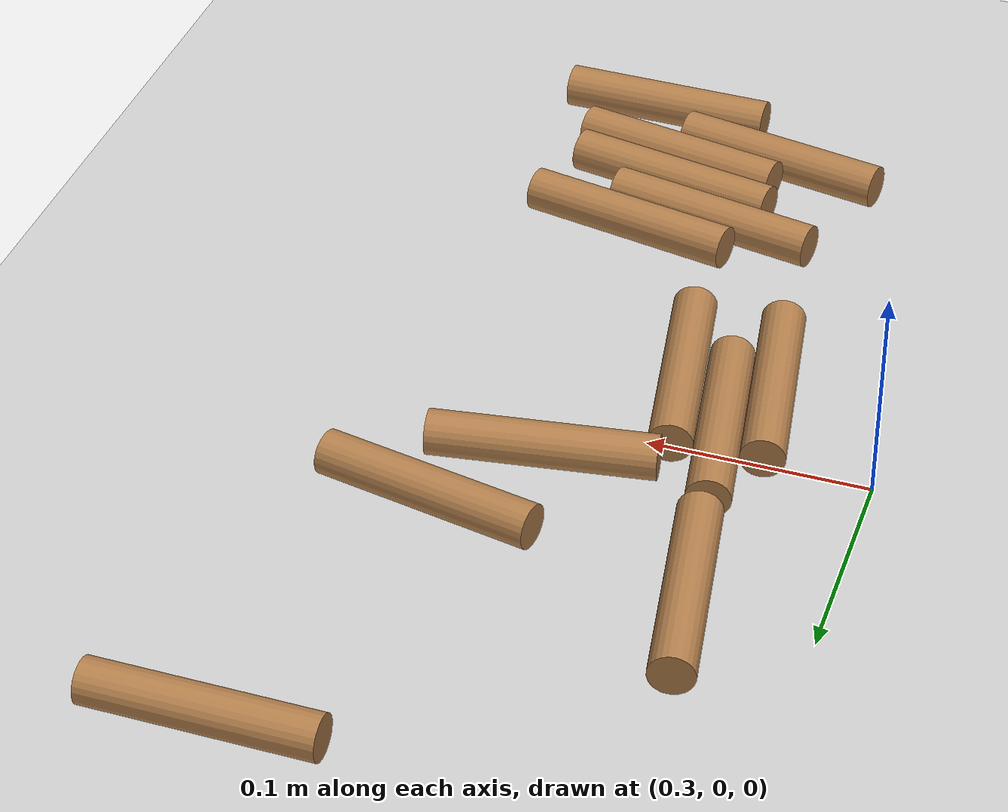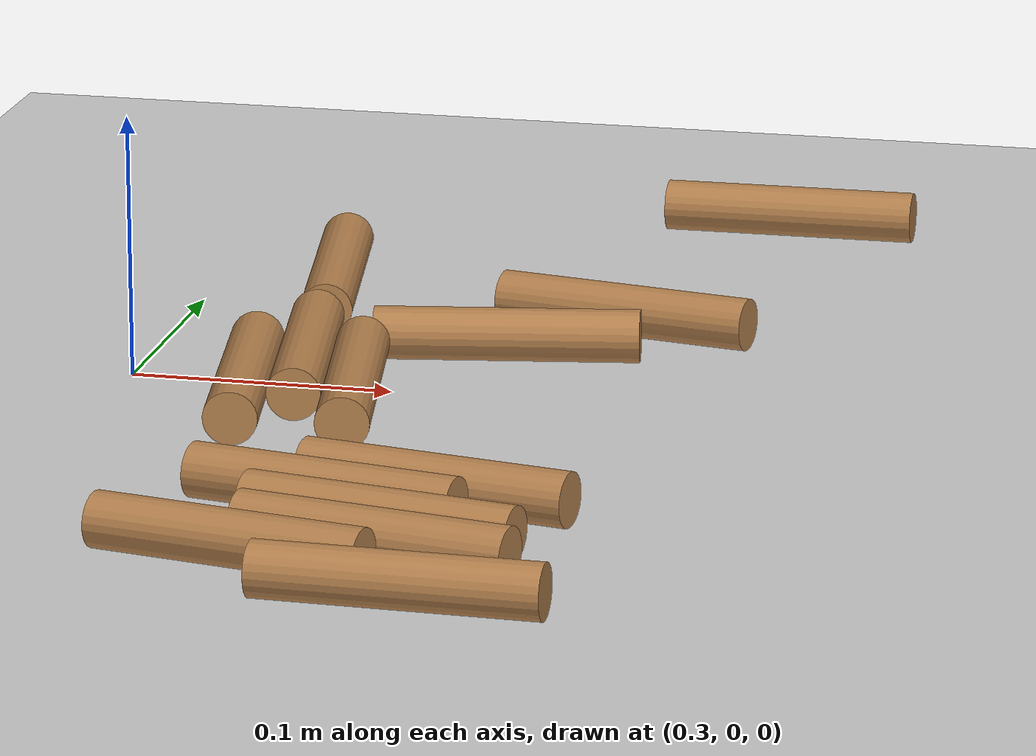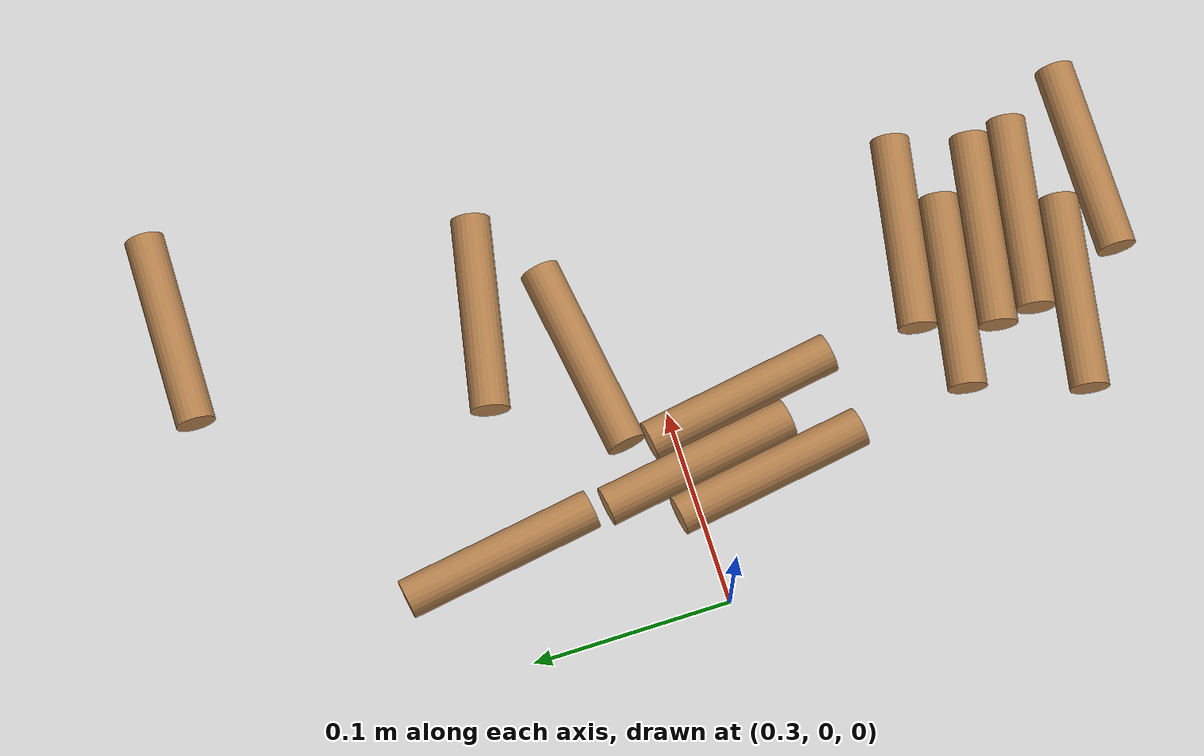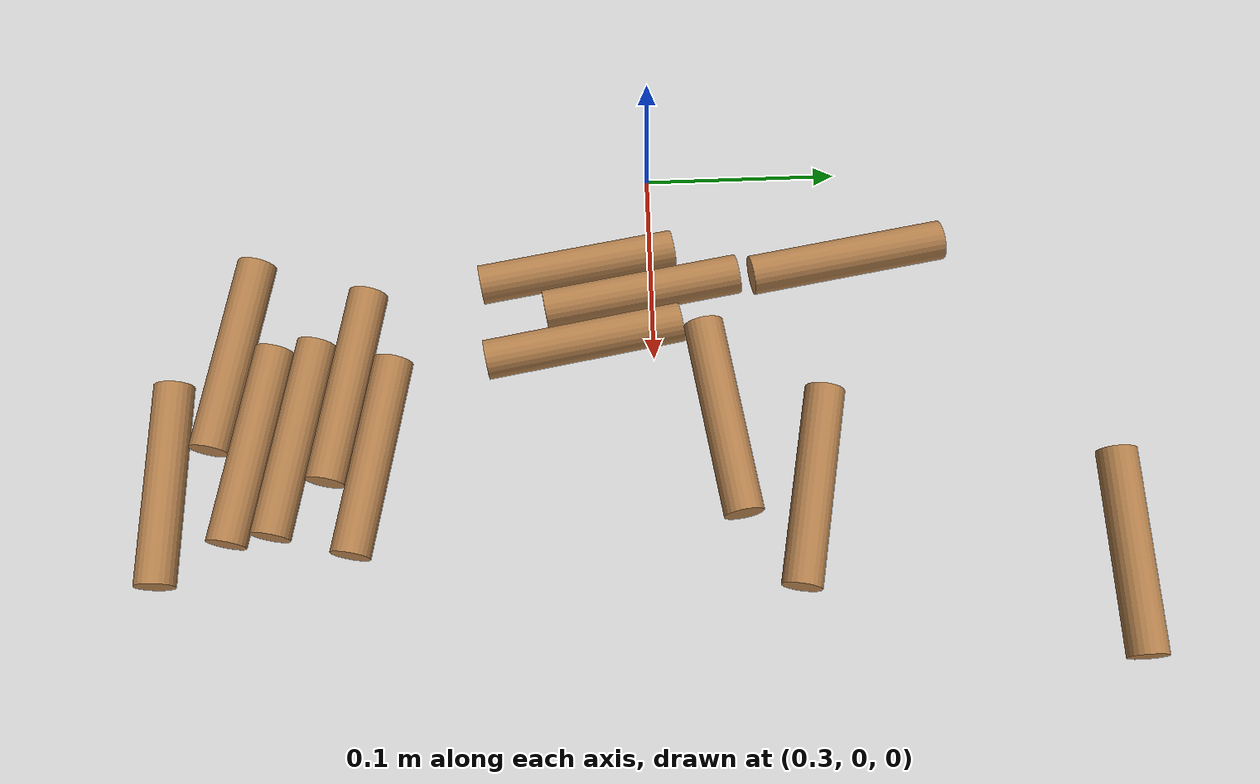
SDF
<sdf version="1.6">
 <world name="default">
  <light name="sun" type="directional">
   <pose>0 0 10 0 -0 0</pose>
   <diffuse>0.8 0.8 0.8 1</diffuse>
   <specular>0.2 0.2 0.2 1</specular>
   <attenuation>
    <range>1000</range>
    <constant>0.9</constant>
    <linear>0.01</linear>
    <quadratic>0.001</quadratic>
   </attenuation>
   <direction>-0.5 0.1 -0.9</direction>
  </light>
  <model name="ground_plane">
   <static>1</static>
   <link name="link">
    <collision name="collision">
     <geometry><plane><normal>0 0 1</normal><size>100 100</size></plane></geometry>
     <surface><friction><ode><mu>100</mu><mu2>50</mu2></ode></friction></surface>
    </collision>
    <visual name="visual">
     <cast_shadows>0</cast_shadows>
     <geometry><plane><normal>0 0 1</normal><size>100 100</size></plane></geometry>
     <material>
      <script><uri>file://media/materials/scripts/gazebo.material</uri><name>Gazebo/Grey</name></script>
     </material>
    </visual>
   </link>
  </model>
  <gravity>0 0 -9.8</gravity>
  <magnetic_field>6e-06 2.3e-05 -4.2e-05</magnetic_field>
  <atmosphere type="adiabatic"/>
  <physics name="default_physics" default="0" type="ode">
   <max_step_size>0.001</max_step_size>
   <real_time_factor>1</real_time_factor>
   <real_time_update_rate>1000</real_time_update_rate>
  </physics>
  <scene><ambient>0.4 0.4 0.4 1</ambient><background>0.7 0.7 0.7 1</background><shadows>1</shadows></scene>
  <audio><device>default</device></audio>
  <spherical_coordinates>
   <surface_model>EARTH_WGS84</surface_model>
   <latitude_deg>0</latitude_deg>
   <longitude_deg>0</longitude_deg>
   <elevation>0</elevation>
   <heading_deg>0</heading_deg>
  </spherical_coordinates>
  <model name="my wooden_peg">
   <link name="link">
    <pose>0 0 0.04 0 -0 0</pose>
    <inertial>
     <mass>0.0175</mass>
     <inertia>
      <ixx>9.74923e-06</ixx>
      <ixy>0</ixy>
      <ixz>0</ixz>
      <iyy>9.74923e-06</iyy>
      <iyz>0</iyz>
      <izz>8.31797e-07</izz>
     </inertia>
    </inertial>
    <collision name="collision">
     <geometry><cylinder><radius>0.01</radius><length>0.1</length></cylinder></geometry>
     <surface>
      <contact>
       <poissons_ratio>0.347</poissons_ratio>
       <elastic_modulus>8.8e+09</elastic_modulus>
       <ode><kp>100000</kp><kd>100</kd><max_vel>100</max_vel><min_depth>0.001</min_depth></ode>
      </contact>
      <friction>
       <torsional>
        <coefficient>1</coefficient>
        <use_patch_radius>0</use_patch_radius>
        <surface_radius>0.01</surface_radius>
       </torsional>
      </friction>
     </surface>
    </collision>
    <visual name="visual">
     <geometry><cylinder><radius>0.01</radius><length>0.1</length></cylinder></geometry>
     <material>
      <script><uri>file://media/materials/scripts/gazebo.material</uri><name>Gazebo/Wood</name></script>
     </material>
    </visual>
   </link>
   <pose>0.420498 -0.240055 0.014519 1.56998 0.229752 1.546</pose>
  </model>
  <model name="my wooden_peg_clone">
   <link name="link">
    <pose>0 0 0.04 0 -0 0</pose>
    <inertial>
     <mass>0.0175</mass>
     <inertia>
      <ixx>9.74923e-06</ixx>
      <ixy>0</ixy>
      <ixz>0</ixz>
      <iyy>9.74923e-06</iyy>
      <iyz>0</iyz>
      <izz>8.31797e-07</izz>
     </inertia>
    </inertial>
    <collision name="collision">
     <geometry><cylinder><radius>0.01</radius><length>0.1</length></cylinder></geometry>
     <surface>
      <contact>
       <poissons_ratio>0.347</poissons_ratio>
       <elastic_modulus>8.8e+09</elastic_modulus>
       <ode><kp>100000</kp><kd>100</kd><max_vel>100</max_vel><min_depth>0.001</min_depth></ode>
      </contact>
      <friction>
       <torsional>
        <coefficient>1</coefficient>
        <use_patch_radius>0</use_patch_radius>
        <surface_radius>0.01</surface_radius>
       </torsional>
      </friction>
     </surface>
    </collision>
    <visual name="visual">
     <geometry><cylinder><radius>0.01</radius><length>0.1</length></cylinder></geometry>
     <material>
      <script><uri>file://media/materials/scripts/gazebo.material</uri><name>Gazebo/Wood</name></script>
     </material>
    </visual>
   </link>
   <pose>0.403091 -0.192502 0.014505 -1.56992 0.476841 -1.76031</pose>
  </model>
  <model name="my wooden_peg_clone_clone">
   <link name="link">
    <pose>0 0 0.04 0 -0 0</pose>
    <inertial>
     <mass>0.0175</mass>
     <inertia>
      <ixx>9.74923e-06</ixx>
      <ixy>0</ixy>
      <ixz>0</ixz>
      <iyy>9.74923e-06</iyy>
      <iyz>0</iyz>
      <izz>8.31797e-07</izz>
     </inertia>
    </inertial>
    <collision name="collision">
     <geometry><cylinder><radius>0.01</radius><length>0.1</length></cylinder></geometry>
     <surface>
      <contact>
       <poissons_ratio>0.347</poissons_ratio>
       <elastic_modulus>8.8e+09</elastic_modulus>
       <ode><kp>100000</kp><kd>100</kd><max_vel>100</max_vel><min_depth>0.001</min_depth></ode>
      </contact>
      <friction>
       <torsional>
        <coefficient>1</coefficient>
        <use_patch_radius>0</use_patch_radius>
        <surface_radius>0.01</surface_radius>
       </torsional>
      </friction>
     </surface>
    </collision>
    <visual name="visual">
     <geometry><cylinder><radius>0.01</radius><length>0.1</length></cylinder></geometry>
     <material>
      <script><uri>file://media/materials/scripts/gazebo.material</uri><name>Gazebo/Wood</name></script>
     </material>
    </visual>
   </link>
   <pose>0.400328 -0.171607 0.014503 -1.55691 -1.51443 -1.77446</pose>
  </model>
  <model name="my wooden_peg_clone_clone_0">
   <link name="link">
    <pose>0 0 0.04 0 -0 0</pose>
    <inertial>
     <mass>0.0175</mass>
     <inertia>
      <ixx>9.74923e-06</ixx>
      <ixy>0</ixy>
      <ixz>0</ixz>
      <iyy>9.74923e-06</iyy>
      <iyz>0</iyz>
      <izz>8.31797e-07</izz>
     </inertia>
    </inertial>
    <collision name="collision">
     <geometry><cylinder><radius>0.01</radius><length>0.1</length></cylinder></geometry>
     <surface>
      <contact>
       <poissons_ratio>0.347</poissons_ratio>
       <elastic_modulus>8.8e+09</elastic_modulus>
       <ode><kp>100000</kp><kd>100</kd><max_vel>100</max_vel><min_depth>0.001</min_depth></ode>
      </contact>
      <friction>
       <torsional>
        <coefficient>1</coefficient>
        <use_patch_radius>0</use_patch_radius>
        <surface_radius>0.01</surface_radius>
       </torsional>
      </friction>
     </surface>
    </collision>
    <visual name="visual">
     <geometry><cylinder><radius>0.01</radius><length>0.1</length></cylinder></geometry>
     <material>
      <script><uri>file://media/materials/scripts/gazebo.material</uri><name>Gazebo/Wood</name></script>
     </material>
    </visual>
   </link>
   <pose>0.410869 -0.132922 0.014511 1.56918 1.06475 1.37978</pose>
  </model>
  <model name="my wooden_peg_clone_clone_1">
   <link name="link">
    <pose>0 0 0.04 0 -0 0</pose>
    <inertial>
     <mass>0.0175</mass>
     <inertia>
      <ixx>9.74923e-06</ixx>
      <ixy>0</ixy>
      <ixz>0</ixz>
      <iyy>9.74923e-06</iyy>
      <iyz>0</iyz>
      <izz>8.31797e-07</izz>
     </inertia>
    </inertial>
    <collision name="collision">
     <geometry><cylinder><radius>0.01</radius><length>0.1</length></cylinder></geometry>
     <surface>
      <contact>
       <poissons_ratio>0.347</poissons_ratio>
       <elastic_modulus>8.8e+09</elastic_modulus>
       <ode><kp>100000</kp><kd>100</kd><max_vel>100</max_vel><min_depth>0.001</min_depth></ode>
      </contact>
      <friction>
       <torsional>
        <coefficient>1</coefficient>
        <use_patch_radius>0</use_patch_radius>
        <surface_radius>0.01</surface_radius>
       </torsional>
      </friction>
     </surface>
    </collision>
    <visual name="visual">
     <geometry><cylinder><radius>0.01</radius><length>0.1</length></cylinder></geometry>
     <material>
      <script><uri>file://media/materials/scripts/gazebo.material</uri><name>Gazebo/Wood</name></script>
     </material>
    </visual>
   </link>
   <pose>0.434303 0.081891 0.01453 1.56133 1.48806 1.37079</pose>
  </model>
  <model name="my wooden_peg_clone_clone_2">
   <link name="link">
    <pose>0 0 0.04 0 -0 0</pose>
    <inertial>
     <mass>0.0175</mass>
     <inertia>
      <ixx>9.74923e-06</ixx>
      <ixy>0</ixy>
      <ixz>0</ixz>
      <iyy>9.74923e-06</iyy>
      <iyz>0</iyz>
      <izz>8.31797e-07</izz>
     </inertia>
    </inertial>
    <collision name="collision">
     <geometry><cylinder><radius>0.01</radius><length>0.1</length></cylinder></geometry>
     <surface>
      <contact>
       <poissons_ratio>0.347</poissons_ratio>
       <elastic_modulus>8.8e+09</elastic_modulus>
       <ode><kp>100000</kp><kd>100</kd><max_vel>100</max_vel><min_depth>0.001</min_depth></ode>
      </contact>
      <friction>
       <torsional>
        <coefficient>1</coefficient>
        <use_patch_radius>0</use_patch_radius>
        <surface_radius>0.01</surface_radius>
       </torsional>
      </friction>
     </surface>
    </collision>
    <visual name="visual">
     <geometry><cylinder><radius>0.01</radius><length>0.1</length></cylinder></geometry>
     <material>
      <script><uri>file://media/materials/scripts/gazebo.material</uri><name>Gazebo/Wood</name></script>
     </material>
    </visual>
   </link>
   <pose>0.374113 -0.146218 0.014482 -1.56968 -0.791803 -1.76127</pose>
  </model>
  <model name="my wooden_peg_clone_clone_3">
   <link name="link">
    <pose>0 0 0.04 0 -0 0</pose>
    <inertial>
     <mass>0.0175</mass>
     <inertia>
      <ixx>9.74923e-06</ixx>
      <ixy>0</ixy>
      <ixz>0</ixz>
      <iyy>9.74923e-06</iyy>
      <iyz>0</iyz>
      <izz>8.31797e-07</izz>
     </inertia>
    </inertial>
    <collision name="collision">
     <geometry><cylinder><radius>0.01</radius><length>0.1</length></cylinder></geometry>
     <surface>
      <contact>
       <poissons_ratio>0.347</poissons_ratio>
       <elastic_modulus>8.8e+09</elastic_modulus>
       <ode><kp>100000</kp><kd>100</kd><max_vel>100</max_vel><min_depth>0.001</min_depth></ode>
      </contact>
      <friction>
       <torsional>
        <coefficient>1</coefficient>
        <use_patch_radius>0</use_patch_radius>
        <surface_radius>0.01</surface_radius>
       </torsional>
      </friction>
     </surface>
    </collision>
    <visual name="visual">
     <geometry><cylinder><radius>0.01</radius><length>0.1</length></cylinder></geometry>
     <material>
      <script><uri>file://media/materials/scripts/gazebo.material</uri><name>Gazebo/Wood</name></script>
     </material>
    </visual>
   </link>
   <pose>0.360092 -0.077259 0.014471 1.57148 -1.38 -2.98139</pose>
  </model>
  <model name="my wooden_peg_clone_clone_4">
   <link name="link">
    <pose>0 0 0.04 0 -0 0</pose>
    <inertial>
     <mass>0.0175</mass>
     <inertia>
      <ixx>9.74923e-06</ixx>
      <ixy>0</ixy>
      <ixz>0</ixz>
      <iyy>9.74923e-06</iyy>
      <iyz>0</iyz>
      <izz>8.31797e-07</izz>
     </inertia>
    </inertial>
    <collision name="collision">
     <geometry><cylinder><radius>0.01</radius><length>0.1</length></cylinder></geometry>
     <surface>
      <contact>
       <poissons_ratio>0.347</poissons_ratio>
       <elastic_modulus>8.8e+09</elastic_modulus>
       <ode><kp>100000</kp><kd>100</kd><max_vel>100</max_vel><min_depth>0.001</min_depth></ode>
      </contact>
      <friction>
       <torsional>
        <coefficient>1</coefficient>
        <use_patch_radius>0</use_patch_radius>
        <surface_radius>0.01</surface_radius>
       </torsional>
      </friction>
     </surface>
    </collision>
    <visual name="visual">
     <geometry><cylinder><radius>0.01</radius><length>0.1</length></cylinder></geometry>
     <material>
      <script><uri>file://media/materials/scripts/gazebo.material</uri><name>Gazebo/Wood</name></script>
     </material>
    </visual>
   </link>
   <pose>0.476373 0.038221 0.015303 -1.57528 -0.46315 1.71968</pose>
  </model>
  <model name="my wooden_peg_clone_clone_5">
   <link name="link">
    <pose>0 0 0.04 0 -0 0</pose>
    <inertial>
     <mass>0.0175</mass>
     <inertia>
      <ixx>9.74923e-06</ixx>
      <ixy>0</ixy>
      <ixz>0</ixz>
      <iyy>9.74923e-06</iyy>
      <iyz>0</iyz>
      <izz>8.31797e-07</izz>
     </inertia>
    </inertial>
    <collision name="collision">
     <geometry><cylinder><radius>0.01</radius><length>0.1</length></cylinder></geometry>
     <surface>
      <contact>
       <poissons_ratio>0.347</poissons_ratio>
       <elastic_modulus>8.8e+09</elastic_modulus>
       <ode><kp>100000</kp><kd>100</kd><max_vel>100</max_vel><min_depth>0.001</min_depth></ode>
      </contact>
      <friction>
       <torsional>
        <coefficient>1</coefficient>
        <use_patch_radius>0</use_patch_radius>
        <surface_radius>0.01</surface_radius>
       </torsional>
      </friction>
     </surface>
    </collision>
    <visual name="visual">
     <geometry><cylinder><radius>0.01</radius><length>0.1</length></cylinder></geometry>
     <material>
      <script><uri>file://media/materials/scripts/gazebo.material</uri><name>Gazebo/Wood</name></script>
     </material>
    </visual>
   </link>
   <pose>0.355819 -0.203823 0.014272 -1.57001 0.106563 -1.76015</pose>
  </model>
  <model name="my wooden_peg_clone_clone_3_clone">
   <link name="link">
    <pose>0 0 0.04 0 -0 0</pose>
    <inertial>
     <mass>0.0175</mass>
     <inertia>
      <ixx>9.74923e-06</ixx>
      <ixy>0</ixy>
      <ixz>0</ixz>
      <iyy>9.74923e-06</iyy>
      <iyz>0</iyz>
      <izz>8.31797e-07</izz>
     </inertia>
    </inertial>
    <collision name="collision">
     <geometry><cylinder><radius>0.01</radius><length>0.1</length></cylinder></geometry>
     <surface>
      <contact>
       <poissons_ratio>0.347</poissons_ratio>
       <elastic_modulus>8.8e+09</elastic_modulus>
       <ode><kp>100000</kp><kd>100</kd><max_vel>100</max_vel><min_depth>0.001</min_depth></ode>
      </contact>
      <friction>
       <torsional>
        <coefficient>1</coefficient>
        <use_patch_radius>0</use_patch_radius>
        <surface_radius>0.01</surface_radius>
       </torsional>
      </friction>
     </surface>
    </collision>
    <visual name="visual">
     <geometry><cylinder><radius>0.01</radius><length>0.1</length></cylinder></geometry>
     <material>
      <script><uri>file://media/materials/scripts/gazebo.material</uri><name>Gazebo/Wood</name></script>
     </material>
    </visual>
   </link>
   <pose>0.375077 -0.044873 0.014483 1.57116 -1.2106 -2.98106</pose>
  </model>
  <model name="my wooden_peg_clone_clone_3_clone_0">
   <link name="link">
    <pose>0 0 0.04 0 -0 0</pose>
    <inertial>
     <mass>0.0175</mass>
     <inertia>
      <ixx>9.74923e-06</ixx>
      <ixy>0</ixy>
      <ixz>0</ixz>
      <iyy>9.74923e-06</iyy>
      <iyz>0</iyz>
      <izz>8.31797e-07</izz>
     </inertia>
    </inertial>
    <collision name="collision">
     <geometry><cylinder><radius>0.01</radius><length>0.1</length></cylinder></geometry>
     <surface>
      <contact>
       <poissons_ratio>0.347</poissons_ratio>
       <elastic_modulus>8.8e+09</elastic_modulus>
       <ode><kp>100000</kp><kd>100</kd><max_vel>100</max_vel><min_depth>0.001</min_depth></ode>
      </contact>
      <friction>
       <torsional>
        <coefficient>1</coefficient>
        <use_patch_radius>0</use_patch_radius>
        <surface_radius>0.01</surface_radius>
       </torsional>
      </friction>
     </surface>
    </collision>
    <visual name="visual">
     <geometry><cylinder><radius>0.01</radius><length>0.1</length></cylinder></geometry>
     <material>
      <script><uri>file://media/materials/scripts/gazebo.material</uri><name>Gazebo/Wood</name></script>
     </material>
    </visual>
   </link>
   <pose>0.400704 -0.074775 0.014503 1.57106 1.03686 -2.97482</pose>
  </model>
  <model name="my wooden_peg_clone_clone_3_clone_1">
   <link name="link">
    <pose>0 0 0.04 0 -0 0</pose>
    <inertial>
     <mass>0.0175</mass>
     <inertia>
      <ixx>9.74923e-06</ixx>
      <ixy>0</ixy>
      <ixz>0</ixz>
      <iyy>9.74923e-06</iyy>
      <iyz>0</iyz>
      <izz>8.31797e-07</izz>
     </inertia>
    </inertial>
    <collision name="collision">
     <geometry><cylinder><radius>0.01</radius><length>0.1</length></cylinder></geometry>
     <surface>
      <contact>
       <poissons_ratio>0.347</poissons_ratio>
       <elastic_modulus>8.8e+09</elastic_modulus>
       <ode><kp>100000</kp><kd>100</kd><max_vel>100</max_vel><min_depth>0.001</min_depth></ode>
      </contact>
      <friction>
       <torsional>
        <coefficient>1</coefficient>
        <use_patch_radius>0</use_patch_radius>
        <surface_radius>0.01</surface_radius>
       </torsional>
      </friction>
     </surface>
    </collision>
    <visual name="visual">
     <geometry><cylinder><radius>0.01</radius><length>0.1</length></cylinder></geometry>
     <material>
      <script><uri>file://media/materials/scripts/gazebo.material</uri><name>Gazebo/Wood</name></script>
     </material>
    </visual>
   </link>
   <pose>0.360253 0.061092 0.014471 1.57096 0.648558 -2.98087</pose>
  </model>
  <model name="my wooden_peg_clone_clone_3_clone_2">
   <link name="link">
    <pose>0 0 0.04 0 -0 0</pose>
    <inertial>
     <mass>0.0175</mass>
     <inertia>
      <ixx>9.74923e-06</ixx>
      <ixy>0</ixy>
      <ixz>0</ixz>
      <iyy>9.74923e-06</iyy>
      <iyz>0</iyz>
      <izz>8.31797e-07</izz>
     </inertia>
    </inertial>
    <collision name="collision">
     <geometry><cylinder><radius>0.01</radius><length>0.1</length></cylinder></geometry>
     <surface>
      <contact>
       <poissons_ratio>0.347</poissons_ratio>
       <elastic_modulus>8.8e+09</elastic_modulus>
       <ode><kp>100000</kp><kd>100</kd><max_vel>100</max_vel><min_depth>0.001</min_depth></ode>
      </contact>
      <friction>
       <torsional>
        <coefficient>1</coefficient>
        <use_patch_radius>0</use_patch_radius>
        <surface_radius>0.01</surface_radius>
       </torsional>
      </friction>
     </surface>
    </collision>
    <visual name="visual">
     <geometry><cylinder><radius>0.01</radius><length>0.1</length></cylinder></geometry>
     <material>
      <script><uri>file://media/materials/scripts/gazebo.material</uri><name>Gazebo/Wood</name></script>
     </material>
    </visual>
   </link>
   <pose>0.551749 0.223837 0.01476 1.57428 -0.844152 -1.57416</pose>
  </model>
 </world>
</sdf>
